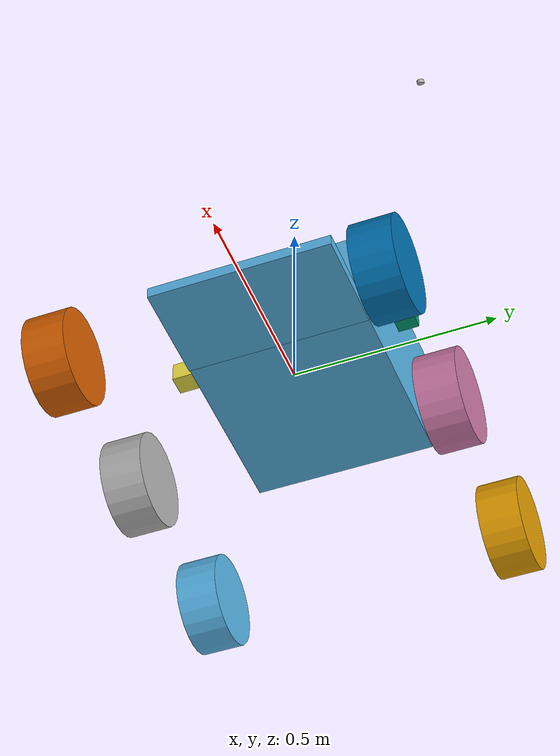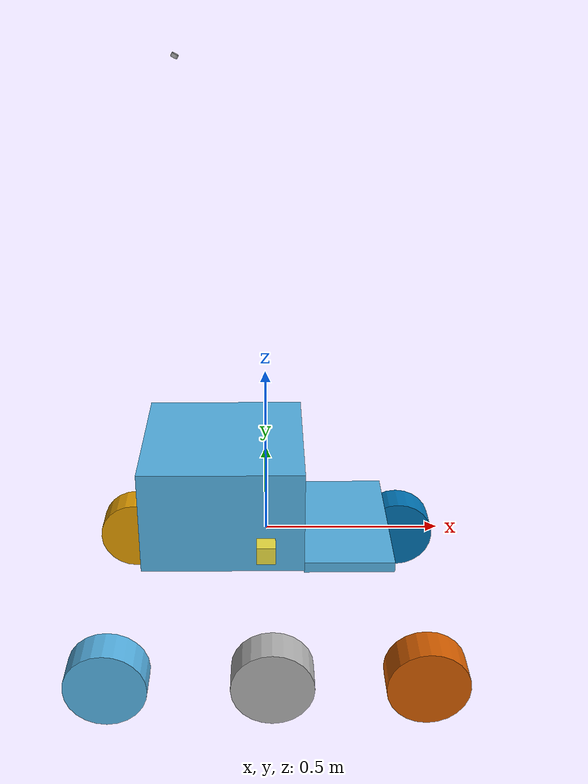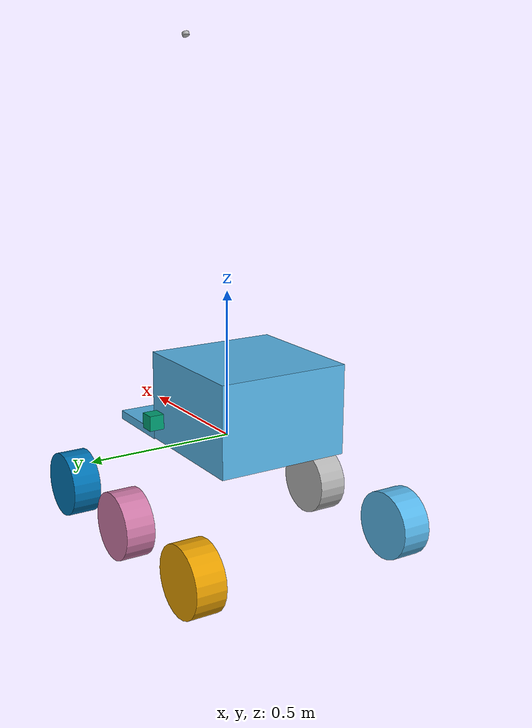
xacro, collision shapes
<?xml version="1.0"?>
<robot name="uirover" xmlns:xacro="http://www.ros.org/wiki/xacro">
    <xacro:include filename="$(find uirover_description)/xacro/gazebo.urdf.xacro"/>

    <xacro:include filename="$(find uirover_hardware)/xacro/ros2_control.urdf.xacro"/>
    <xacro:uirover_ros2_control hw_type="target"/>

    <xacro:include filename="$(find uirover_description)/xacro/chassis.urdf.xacro"/>

    <xacro:include filename="$(find uirover_description)/xacro/sensors.urdf.xacro"/>
</robot>

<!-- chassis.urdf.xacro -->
<robot name="uirover" xmlns:xacro="http://www.ros.org/wiki/xacro">
  <!-- IMPORTS -->
  <xacro:include filename="$(find uirover_description)/xacro/utility_macros.xacro" />
  <xacro:include filename="$(find uirover_description)/xacro/properties.xacro" />

  <!-- BASE LINK -->
  <link name="base_link"></link>

  <!-- CHASSIS -->
  <link name="chassis">
    <visual>
      <origin xyz="-0.35 0.203 0.0" rpy="${pi/2} 0.0 0.0" />
      <geometry>
        <mesh filename="file://$(find uirover_description)/dae/chassis.dae" />
      </geometry>
    </visual>
    <collision>
      <geometry>
        <box size="0.45 0.45 0.3" />
      </geometry>
      <origin xyz="-0.12 0 0.15" />
    </collision>
    <collision>
      <geometry>
        <box size="0.25 0.45 0.03" />
      </geometry>
      <origin xyz="0.23 0 0.01"/>
    </collision>
    <xacro:box_inertia_tensor mass="30" len_x="0.65" len_y="0.4" len_z="0.2" />
  </link>
  <joint name="chassis_joint" type="fixed">
    <parent link="base_link" />
    <child link="chassis" />
    <origin xyz="0 0 0" rpy="0 0 0" />
  </joint>

  <!--L
  SUSPENSIONS-->
  <link name="l_suspension">
    <visual>
      <origin xyz="0.085 0.02 -0.06" rpy="${pi/2} 0.0 ${pi}" />
      <geometry>
        <mesh filename="file://$(find uirover_description)/dae/suspension.dae" />
      </geometry>
    </visual>
    <collision>
      <geometry>
        <box size="0.05 0.05 0.05" />
      </geometry>
    </collision>
    <xacro:box_inertia_tensor mass="2" len_x="0.65" len_y="0.05" len_z="0.15" x="0.1" y="0" z="-0.1" />
  </link>
  <joint name="l_suspension_joint" type="fixed">
    <parent link="chassis" />
    <child link="l_suspension" />
    <origin xyz="0 0.28 0.1" rpy="0 0 0" />
    <axis xyz="0 1 0" />
  </joint>

  <!--R
  SUSPENSIONS-->
  <link name="r_suspension">
    <visual>
      <origin xyz="0.085 0.02 -0.06" rpy="${pi/2} 0.0 ${pi}" />
      <geometry>
        <mesh filename="file://$(find uirover_description)/dae/suspension.dae" />
      </geometry>
    </visual>
    <collision>
      <geometry>
        <box size="0.05 0.05 0.05" />
      </geometry>
    </collision>
    <xacro:box_inertia_tensor mass="2" len_x="0.65" len_y="0.05" len_z="0.15" x="0.1" y="0" z="-0.1" />
  </link>
  <joint name="r_suspension_joint" type="fixed">
    <parent link="chassis" />
    <child link="r_suspension" />
    <origin xyz="0 -0.28 0.1" rpy="0 0 0" />
    <axis xyz="0 1 0" />
  </joint>

  <!-- WHEELS -->
  <xacro:wheel name="fl_wheel" x="0.436" y="0.1" z="-0.342" parent="l_suspension" side="left" />
  <xacro:wheel name="fr_wheel" x="0.436" y="-0.1" z="-0.342" parent="r_suspension" side="right" />
  <xacro:wheel name="ml_wheel" x="0.016" y="0.1" z="-0.342" parent="l_suspension" side="left" />
  <xacro:wheel name="mr_wheel" x="0.016" y="-0.1" z="-0.342" parent="r_suspension" side="right" />
  <xacro:wheel name="bl_wheel" x="-0.434" y="0.1" z="-0.342" parent="l_suspension" side="left" />
  <xacro:wheel name="br_wheel" x="-0.434" y="-0.1" z="-0.342" parent="r_suspension" side="right" />

  <!-- Robot Footprint -->
  <!-- This is needed for nav libraries. Its the 2D top-down profile of the robot. Makes for simpler
  collision detection. -->
  <link name="base_footprint" />
  <joint name="base_footprint_joint" type="fixed">
    <parent link="base_link" />
    <child link="base_footprint" />
    <origin xyz="0.0 0.0 -0.3" rpy="0 0 0" />
  </joint>

</robot>

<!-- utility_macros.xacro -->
<robot name="uirover" xmlns:xacro="http://ros.org/wiki/xacro">

  <!-- BOX INERTIA -->
  <xacro:macro name="box_inertia_tensor" params="mass len_x len_y len_z x:=0 y:=0 z:=0">
    <inertial>
      <mass value="${mass}" />
      <inertia ixx="${(1/12)*mass*(len_z*len_z+len_y*len_y)}" ixy="0.0" ixz="0.0"
        iyy="${(1/12)*mass*(len_z*len_z+len_x*len_x)}" iyz="0.0"
        izz="${(1/12)*mass*(len_x*len_x+len_y*len_y)}" />
        <origin xyz="${x} ${y} ${z}" rpy="0 0 0" />
    </inertial>
  </xacro:macro>

  <!-- CYLINDER INERTIA -->
  <xacro:macro name="cylinder_inertia_tensor" params="mass radius length">
    <inertial>
      <mass value="${mass}" />
      <inertia ixx="${(1/12)*mass*(3*radius*radius+length*length)}" ixy="0.0" ixz="0.0"
        iyy="${(1/12)*mass*(3*radius*radius+length*length)}" iyz="0.0"
        izz="${(1/2)*mass*radius*radius}" />
    </inertial>
  </xacro:macro>

  <!-- COLLIDABLE BOX -->
  <xacro:macro name="box" params="name x y z mass">
    <link name="${name}">
      <visual>
        <geometry>
          <box size="${x} ${y} ${z}" />
        </geometry>
        <material name="Grey">
          <color rgba="0.7 0.7 0.7 1.0" />
        </material>
      </visual>
      <collision>
        <geometry>
          <box size="${x} ${y} ${z}" />
        </geometry>
      </collision>
      <xacro:box_inertia_tensor mass="${mass}" len_x="${x}" len_y="${y}" len_z="${z}" />
    </link>
  </xacro:macro>

  <!-- WHEEL -->
  <xacro:macro name="wheel" params="name x y z parent side:=^|left">
    <link name="${name}">
      <visual>
        <xacro:if value="${side == 'left'}">
          <origin xyz="0 0 -0.08" rpy="0 ${pi/2} 0" />
        </xacro:if>
        <xacro:if value="${side == 'right'}">
          <origin xyz="0 0 0.08" rpy="0 ${-pi/2} 0" />
        </xacro:if>
        <geometry>
          <mesh filename="file://$(find uirover_description)/dae/wheel.dae"/>
        </geometry>
      </visual>
      <collision>
        <geometry>
          <cylinder radius="${wheel_diameter/2}" length="${wheel_width}" />
        </geometry>
      </collision>
      <xacro:cylinder_inertia_tensor mass="${wheel_mass}" radius="${wheel_diameter/2}"
        length="${wheel_width}" />
    </link>
    <joint name="${name}_joint" type="continuous">
      <parent link="${parent}" />
      <child link="${name}" />
      <origin xyz="${x} ${y} ${z}" rpy="${-pi/2} 0 0" />
      <axis xyz="0 0 1" />
      <limit effort="30.0" velocity="10.0"/> <!-- 10 rad/s ~ 2.5 mph top speed assuming 9 in diameter tires-->
    </joint>
  </xacro:macro>
</robot>

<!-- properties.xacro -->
<robot name="uirover" xmlns:xacro="http://ros.org/wiki/xacro">
    <xacro:property name="wheel_diameter" value="0.23" />
    <xacro:property name="chassis_width" value="0.45" />
    <xacro:property name="chassis_length" value="0.45" />
    <xacro:property name="chassis_height" value="0.30" />
    <xacro:property name="chassis_mass" value="5" />

    <xacro:property name="arm_platform_width" value="${chassis_width}" />
    <xacro:property name="arm_platform_length" value="0.3" />
    <xacro:property name="arm_platform_height" value="0.05" />
    <xacro:property name="arm_platform_mass" value="3" />

    <xacro:property name="wheel_width" value="0.1" />
    <xacro:property name="wheel_diameter" value="0.228" />
    <xacro:property name="wheel_mass" value="0.5" />
    <xacro:property name="wheel_distance_side" value="0.4" />
    <xacro:property name="wheel_spacing" value="0.4" />
    <xacro:property name="suspension_height" value="0.20"/>
</robot>

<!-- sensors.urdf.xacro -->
<robot name="uirover"
    xmlns:xacro="http://www.ros.org/wiki/xacro">
    <xacro:include filename="$(find uirover_description)/xacro/utility_macros.xacro" />
    <!-- http://sdformat.org/spec?ver=1.9&elem=sensor -->

    <xacro:macro name="arducam" params="name">
        <link name="${name}">
            <visual>
                <origin xyz="0.0 0.0 0.0" rpy="0.0 ${pi/2} 0.0" />
                <geometry>
                    <cylinder radius="0.01" length="0.01" />
                </geometry>
                <material name="Grey">
                    <color rgba="0.7 0.7 0.7 1.0" />
                </material>
            </visual>
            <visual>
                <origin xyz="-0.005 0.0 0.0" rpy="0.0 0.0 0.0" />
                <geometry>
                    <box size="0.005 0.03 0.03" />
                </geometry>
            </visual>
            <collision>
                <geometry>
                    <cylinder radius="0.01" length="0.01" />
                </geometry>
            </collision>
            <xacro:cylinder_inertia_tensor mass="0.1" radius="0.01" length="0.01" />
        </link>
        <gazebo reference="${name}">
            <sensor name="camera" type="camera">
                <topic>${name}</topic>
                <camera>
                    <box_type>2d</box_type>
                    <!-- 110 deg FOV -->
                    <horizontal_fov>1.9198</horizontal_fov>
                    <image>
                        <width>800</width>
                        <height>600</height>
                    </image>
                    <clip>
                        <near>0.1</near>
                        <far>100</far>
                    </clip>
                </camera>
                <always_on>1</always_on>
                <update_rate>5</update_rate>
                <visualize>true</visualize>
            </sensor>
        </gazebo>
    </xacro:macro>

    <!--            SENSORS              -->

    <!-- ARDUCAM CAMERA -->
    <xacro:arducam name="antenna_camera" />
    <joint name="antenna_camera_joint" type="fixed">
        <origin xyz="-0.24 0.28 1.3" rpy="0.0 0.5 0.0" />
        <parent link="base_link" />
        <child link="antenna_camera" />
    </joint>

    <link name="zed_f9p_gps"></link>
    <gazebo reference="zed_f9p_gps">
        <sensor name="zed_f9p_gps" type="navsat">
            <topic>navsat</topic>
            <always_on>true</always_on>
            <update_rate>5</update_rate>
            <navsat>
            </navsat>
        </sensor>
    </gazebo>
    <joint name="zed_f9p_gps_joint" type="fixed">
        <!-- TODO origin coords are a placeholder. not important unless using RTK -->
        <origin xyz="0 0 0"/>
        <parent link="base_link"/>
        <child link="zed_f9p_gps"/>
    </joint>

    <!-- This joint exists because Gazebo Jetty doesnt support manually setting frame_id of GPS messages. -->
    <!-- The message uses a really weird namespaceing so we do this rediculous hack so the TF tree doesnt break -->
    <link name="uirover/base_link/zed_f9p_gps"></link>
    <joint name="stupid_gazebo_workaround_joint" type="fixed">
        <origin xyz="0 0 0"/>
        <parent link="zed_f9p_gps"/>
        <child link="uirover/base_link/zed_f9p_gps"/>
    </joint>

    <!-- https://cdrdv2-public.intel.com/841984/Intel-RealSense-D400-Series-Datasheet.pdf -->
    <link name="d435i_depth_cam"></link>
    <gazebo reference="d435i_depth_cam">
        <sensor name="d435i_depth_cam" type="depth">
            <topic>/d435i_rgbd</topic>
            <always_on>1</always_on>
            <update_rate>5</update_rate>
            <visualize>true</visualize>
            <camera>
                <!-- 86 deg FOV -->
                <camera_info_topic>/d435i_rgbd_info</camera_info_topic>
                <optical_frame_id>d435i_depth_cam</optical_frame_id>
                <horizontal_fov>1.50098</horizontal_fov>
                <image>
                    <!-- Low resolution for performance reasons -->
                    <width>640</width>
                    <height>380</height>
                    <format>B8G8R8</format>
                </image>
                <clip>
                    <near>0.01</near>
                    <far>5</far>                    <!-- required unless youre using a NASA super computer-->
                </clip>
                <depth_camera>
                    <output>depths</output>
                </depth_camera>
            </camera>
        </sensor>
    </gazebo>
    <joint name="d435i_depth_cam_joint" type="fixed">
        <!-- TODO origin coords are a placeholder. not important unless using RTK -->
        <origin xyz="0.4 0.2 0"/>
        <parent link="base_link"/>
        <child link="d435i_depth_cam"/>
    </joint>

    <link name="imu_sensor"></link>
    <gazebo reference="imu_sensor">
        <sensor name="imu_sensor" type="imu">
            <always_on>true</always_on>
            <update_rate>5</update_rate>
            <visualize>true</visualize>
            <topic>/imu</topic>
            <imu>
                <enable_orientation>true</enable_orientation>
                <angular_velocity>
                    <x>
                        <noise type="gaussian">
                            <mean>0.0</mean>
                            <stddev>2e-4</stddev>
                            <bias_mean>0.0000075</bias_mean>
                            <bias_stddev>0.0000008</bias_stddev>
                        </noise>
                    </x>
                    <y>
                        <noise type="gaussian">
                            <mean>0.0</mean>
                            <stddev>2e-4</stddev>
                            <bias_mean>0.0000075</bias_mean>
                            <bias_stddev>0.0000008</bias_stddev>
                        </noise>
                    </y>
                    <z>
                        <noise type="gaussian">
                            <mean>0.0</mean>
                            <stddev>2e-4</stddev>
                            <bias_mean>0.0000075</bias_mean>
                            <bias_stddev>0.0000008</bias_stddev>
                        </noise>
                    </z>
                </angular_velocity>
                <linear_acceleration>
                    <x>
                        <noise type="gaussian">
                            <mean>0.0</mean>
                            <stddev>1.7e-2</stddev>
                            <bias_mean>0.1</bias_mean>
                            <bias_stddev>0.001</bias_stddev>
                        </noise>
                    </x>
                    <y>
                        <noise type="gaussian">
                            <mean>0.0</mean>
                            <stddev>1.7e-2</stddev>
                            <bias_mean>0.1</bias_mean>
                            <bias_stddev>0.001</bias_stddev>
                        </noise>
                    </y>
                    <z>
                        <noise type="gaussian">
                            <mean>0.0</mean>
                            <stddev>1.7e-2</stddev>
                            <bias_mean>0.1</bias_mean>
                            <bias_stddev>0.001</bias_stddev>
                        </noise>
                    </z>
                </linear_acceleration>
            </imu>
        </sensor>
    </gazebo>
    <joint name="imu_sensor_joint" type="fixed">
        <origin xyz="0 0 0"/>
        <parent link="base_link"/>
        <child link="imu_sensor"/>
    </joint>

</robot>
